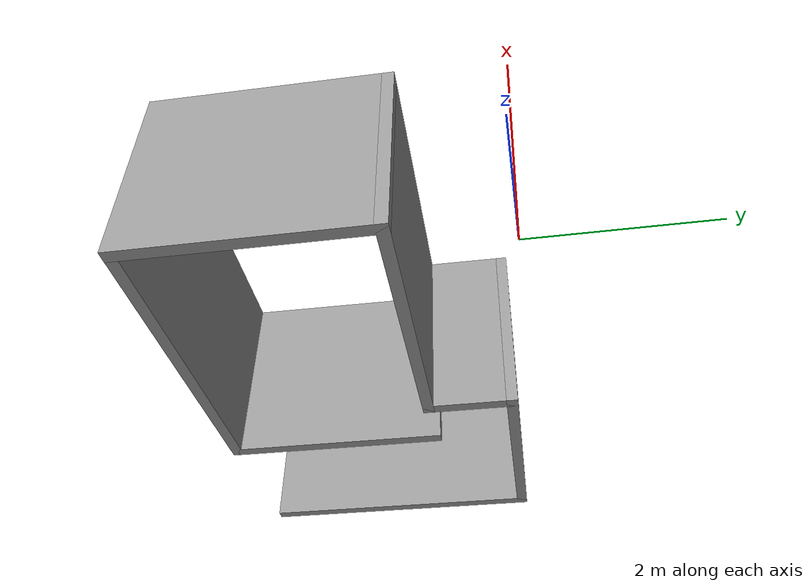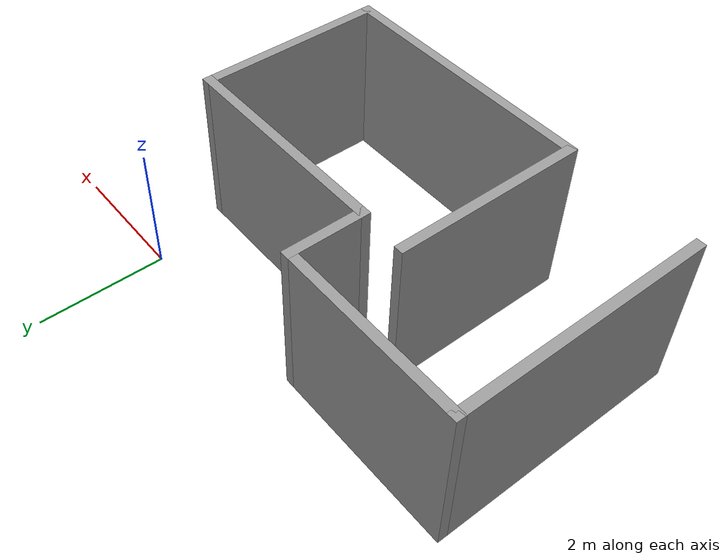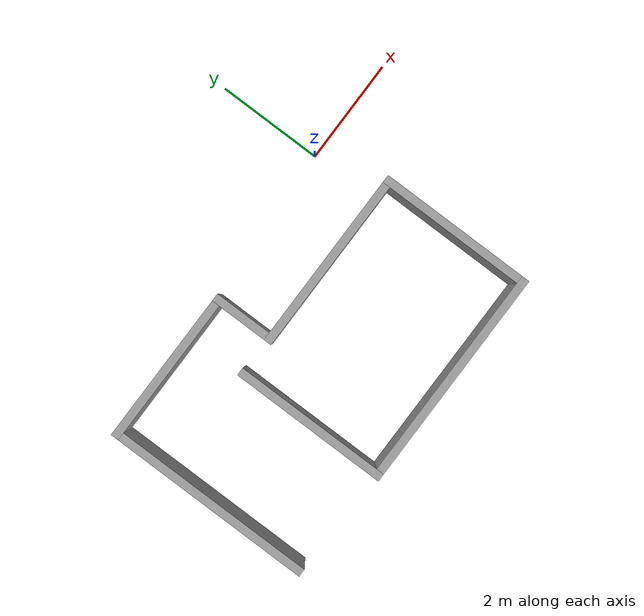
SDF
<?xml version='1.0'?>
<sdf version='1.6'>
  <model name='testing_world'>
    <pose frame=''>-2.77 -2.205 0 0 -0 0</pose>
    <link name='Wall_0'>
      <collision name='Wall_0_Collision'>
        <geometry>
          <box>
            <size>3 0.15 2.5</size>
          </box>
        </geometry>
        <pose frame=''>0 0 1.25 0 -0 0</pose>
      </collision>
      <visual name='Wall_0_Visual'>
        <pose frame=''>0 0 1.25 0 -0 0</pose>
        <geometry>
          <box>
            <size>3 0.15 2.5</size>
          </box>
        </geometry>
        <material>
          <script>
            <uri>file://media/materials/scripts/gazebo.material</uri>
            <name>Gazebo/Grey</name>
          </script>
          <ambient>1 1 1 1</ambient>
        </material>
        <meta>
          <layer>0</layer>
        </meta>
      </visual>
      <pose frame=''>-1 -0.55 0 0 -0 -1.5708</pose>
    </link>
    <link name='Wall_1'>
      <collision name='Wall_1_Collision'>
        <geometry>
          <box>
            <size>4.25 0.15 2.5</size>
          </box>
        </geometry>
        <pose frame=''>0 0 1.25 0 -0 0</pose>
      </collision>
      <visual name='Wall_1_Visual'>
        <pose frame=''>0 0 1.25 0 -0 0</pose>
        <geometry>
          <box>
            <size>4.25 0.15 2.5</size>
          </box>
        </geometry>
        <material>
          <script>
            <uri>file://media/materials/scripts/gazebo.material</uri>
            <name>Gazebo/Grey</name>
          </script>
          <ambient>1 1 1 1</ambient>
        </material>
        <meta>
          <layer>0</layer>
        </meta>
      </visual>
      <pose frame=''>1.05 -1.975 0 0 -0 0</pose>
    </link>
    <link name='Wall_2'>
      <collision name='Wall_2_Collision'>
        <geometry>
          <box>
            <size>3 0.15 2.5</size>
          </box>
        </geometry>
        <pose frame=''>0 0 1.25 0 -0 0</pose>
      </collision>
      <visual name='Wall_2_Visual'>
        <pose frame=''>0 0 1.25 0 -0 0</pose>
        <geometry>
          <box>
            <size>3 0.15 2.5</size>
          </box>
        </geometry>
        <material>
          <script>
            <uri>file://media/materials/scripts/gazebo.material</uri>
            <name>Gazebo/Grey</name>
          </script>
          <ambient>1 1 1 1</ambient>
        </material>
        <meta>
          <layer>0</layer>
        </meta>
      </visual>
      <pose frame=''>3.1 -0.55 0 0 -0 1.5708</pose>
    </link>
    <link name='Wall_3'>
      <collision name='Wall_3_Collision'>
        <geometry>
          <box>
            <size>3.5 0.15 2.5</size>
          </box>
        </geometry>
        <pose frame=''>0 0 1.25 0 -0 0</pose>
      </collision>
      <visual name='Wall_3_Visual'>
        <pose frame=''>0 0 1.25 0 -0 0</pose>
        <geometry>
          <box>
            <size>3.5 0.15 2.5</size>
          </box>
        </geometry>
        <material>
          <script>
            <uri>file://media/materials/scripts/gazebo.material</uri>
            <name>Gazebo/Grey</name>
          </script>
          <ambient>1 1 1 1</ambient>
        </material>
        <meta>
          <layer>0</layer>
        </meta>
      </visual>
      <pose frame=''>1.425 0.875 0 0 -0 3.14159</pose>
    </link>
    <link name='Wall_4'>
      <collision name='Wall_4_Collision'>
        <geometry>
          <box>
            <size>1.25 0.15 2.5</size>
          </box>
        </geometry>
        <pose frame=''>0 0 1.25 0 -0 0</pose>
      </collision>
      <visual name='Wall_4_Visual'>
        <pose frame=''>0 0 1.25 0 -0 0</pose>
        <geometry>
          <box>
            <size>1.25 0.15 2.5</size>
          </box>
        </geometry>
        <material>
          <script>
            <uri>file://media/materials/scripts/gazebo.material</uri>
            <name>Gazebo/Grey</name>
          </script>
          <ambient>1 1 1 1</ambient>
        </material>
        <meta>
          <layer>0</layer>
        </meta>
      </visual>
      <pose frame=''>-0.25 1.425 0 0 -0 1.5708</pose>
    </link>
    <link name='Wall_5'>
      <collision name='Wall_5_Collision'>
        <geometry>
          <box>
            <size>3 0.15 2.5</size>
          </box>
        </geometry>
        <pose frame=''>0 0 1.25 0 -0 0</pose>
      </collision>
      <visual name='Wall_5_Visual'>
        <pose frame=''>0 0 1.25 0 -0 0</pose>
        <geometry>
          <box>
            <size>3 0.15 2.5</size>
          </box>
        </geometry>
        <material>
          <script>
            <uri>file://media/materials/scripts/gazebo.material</uri>
            <name>Gazebo/Grey</name>
          </script>
          <ambient>1 1 1 1</ambient>
        </material>
        <meta>
          <layer>0</layer>
        </meta>
      </visual>
      <pose frame=''>-1.675 1.975 0 0 -0 3.14159</pose>
    </link>
    <link name='Wall_6'>
      <collision name='Wall_6_Collision'>
        <geometry>
          <box>
            <size>4 0.15 2.5</size>
          </box>
        </geometry>
        <pose frame=''>0 0 1.25 0 -0 0</pose>
      </collision>
      <visual name='Wall_6_Visual'>
        <pose frame=''>0 0 1.25 0 -0 0</pose>
        <geometry>
          <box>
            <size>4 0.15 2.5</size>
          </box>
        </geometry>
        <material>
          <script>
            <uri>file://media/materials/scripts/gazebo.material</uri>
            <name>Gazebo/Grey</name>
          </script>
          <ambient>1 1 1 1</ambient>
        </material>
        <meta>
          <layer>0</layer>
        </meta>
      </visual>
      <pose frame=''>-3.1 0.05 0 0 -0 -1.5708</pose>
    </link>
    <static>1</static>
  </model>
</sdf>
